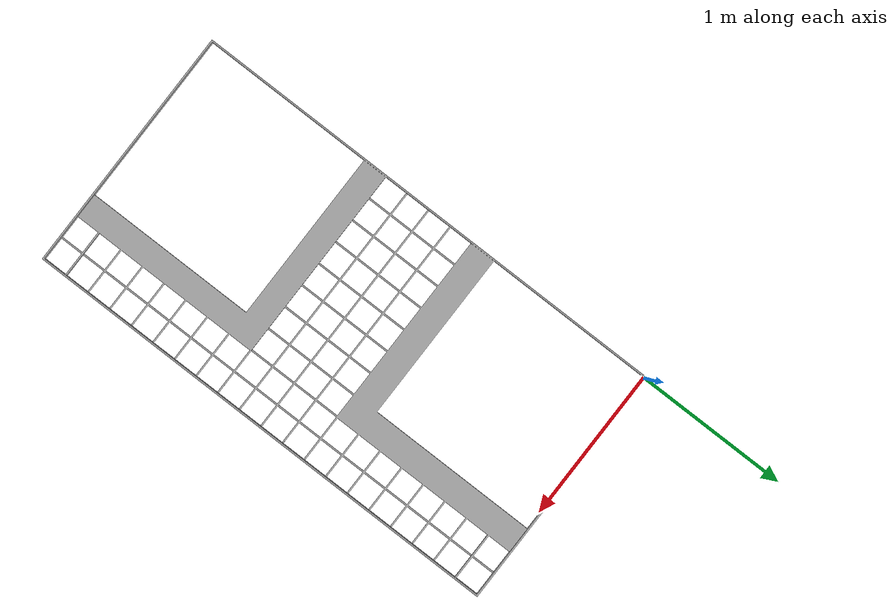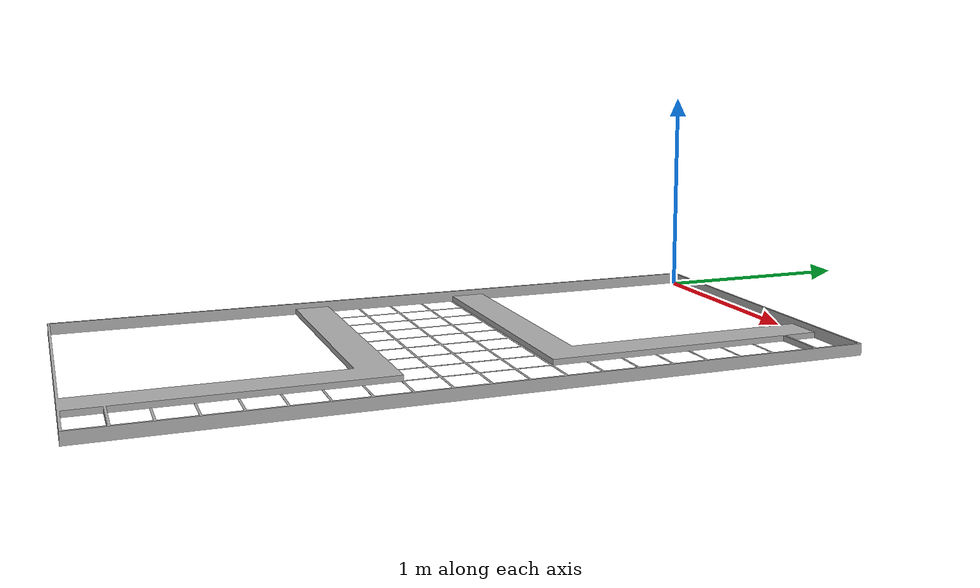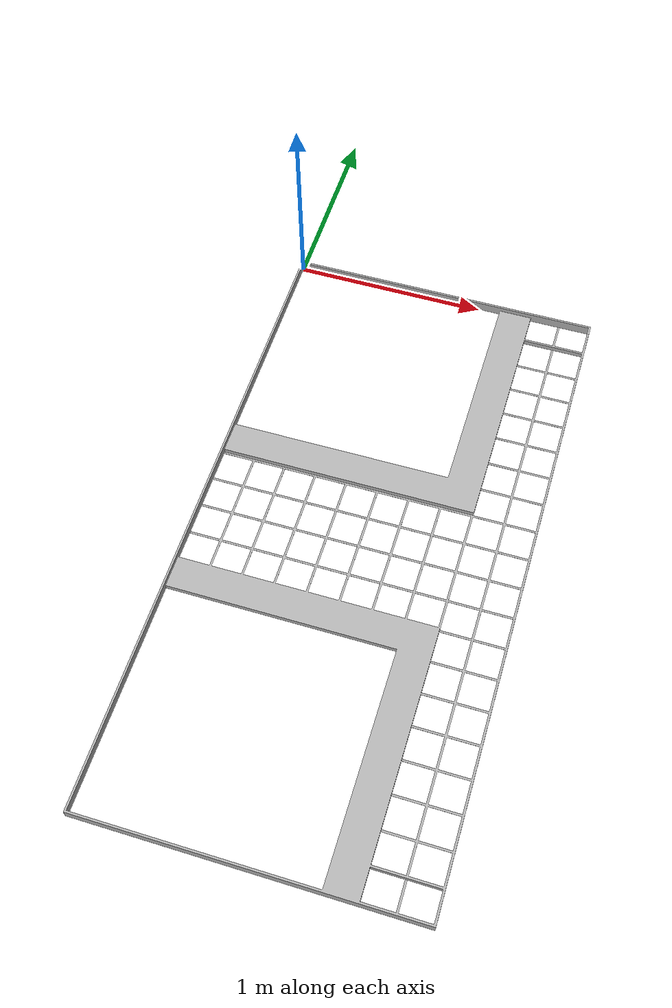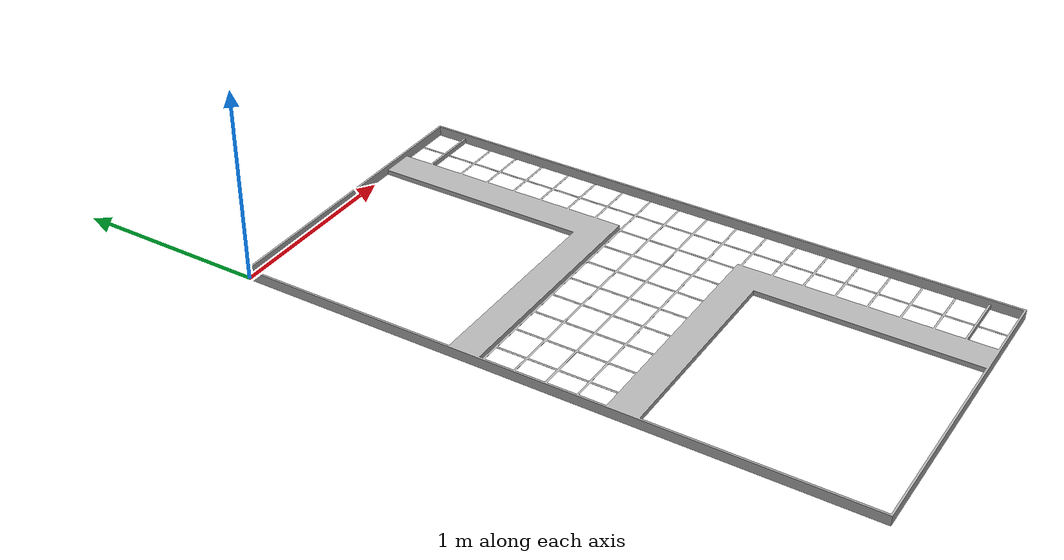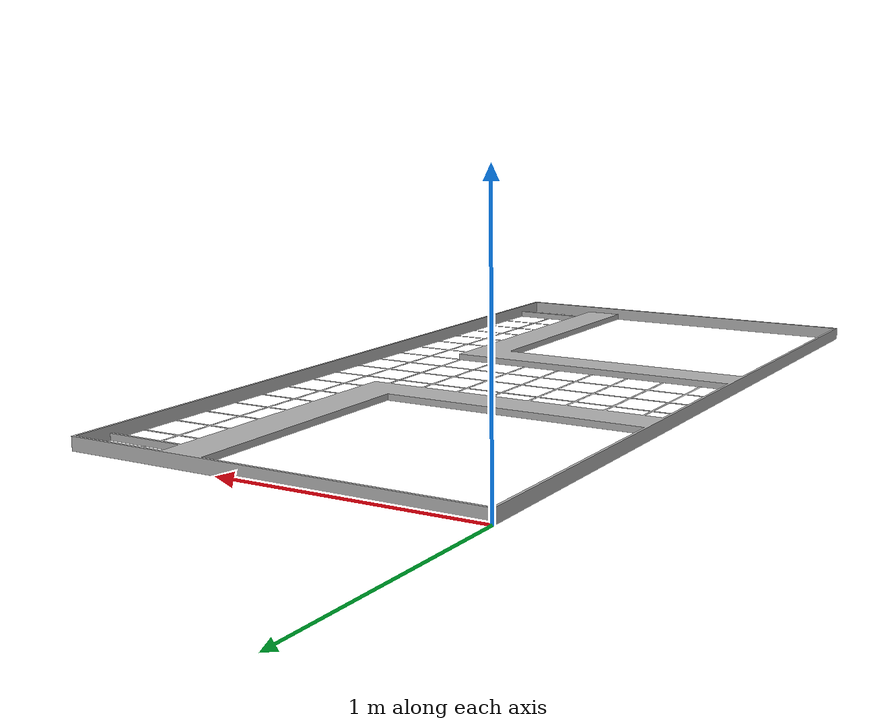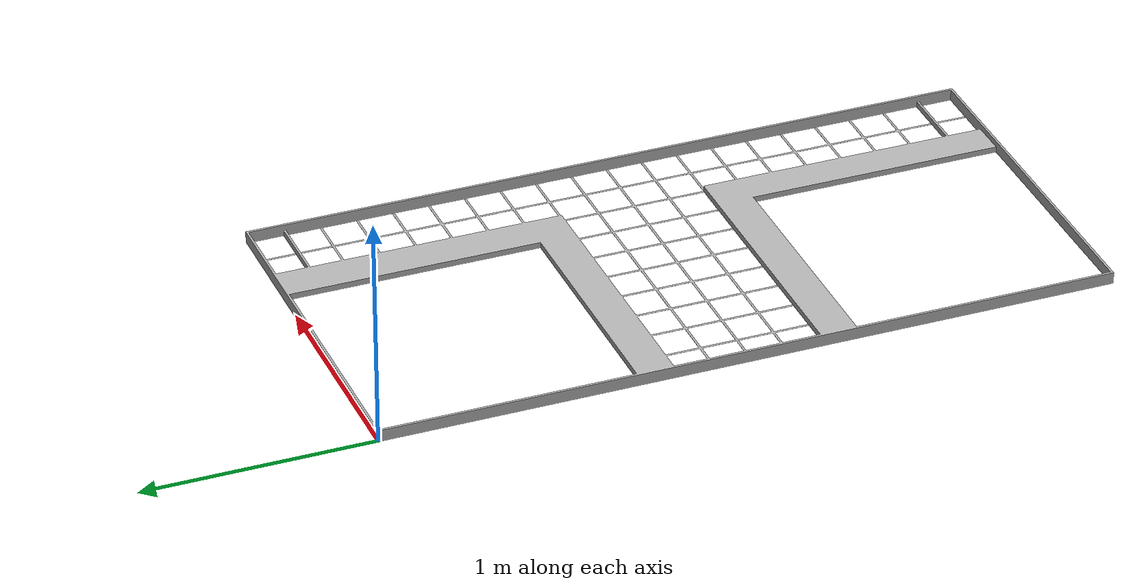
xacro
<?xml version="1.0" ?>
<robot name="arena_r1" xmlns:xacro="http://www.ros.org/wiki/xacro">

<xacro:include filename="$(find bot_description)/urdf/materials_arena.xacro" />
<link name="r1_arena">
  <inertial>
    <origin rpy="0 0 0" xyz="0.8922758586627785 -1.587172872955623 0.019946141935233423"/>
    <mass value="200.30699829761147"/>
    <inertia ixx="161.780484" ixy="-0.422674" ixz="0.046689" iyy="44.857916" iyz="0.006498" izz="206.592979"/>
  </inertial>
  <visual>
    <origin rpy="0 0 0" xyz="0 0 0"/>
    <geometry>
      <mesh filename="package://bot_description/meshes/arena_base.stl" scale="0.001 0.001 0.001"/>
    </geometry>
    <material name="silver"/>
  </visual>
  <collision>
    <origin rpy="0 0 0" xyz="0 0 0"/>
    <geometry>
      <mesh filename="package://bot_description/meshes/arena_base.stl" scale="0.001 0.001 0.001"/>
    </geometry>
  </collision>
</link>

</robot>

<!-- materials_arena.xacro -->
<robot name="arena_r1" xmlns:xacro="http://www.ros.org/wiki/xacro" >

<material name="silver">
  <color rgba="0.700 0.700 0.700 1.000"/>
</material>

</robot>
